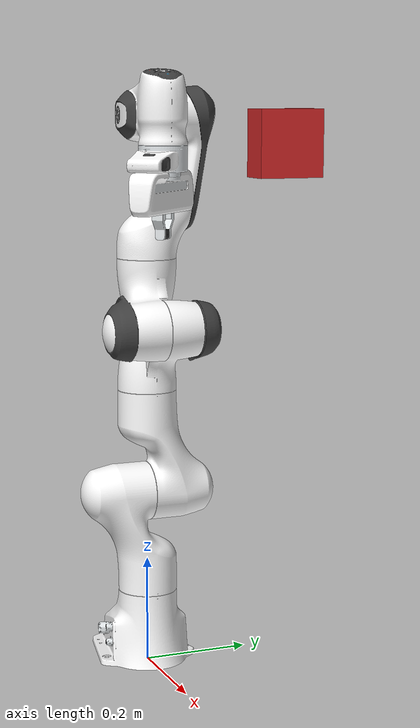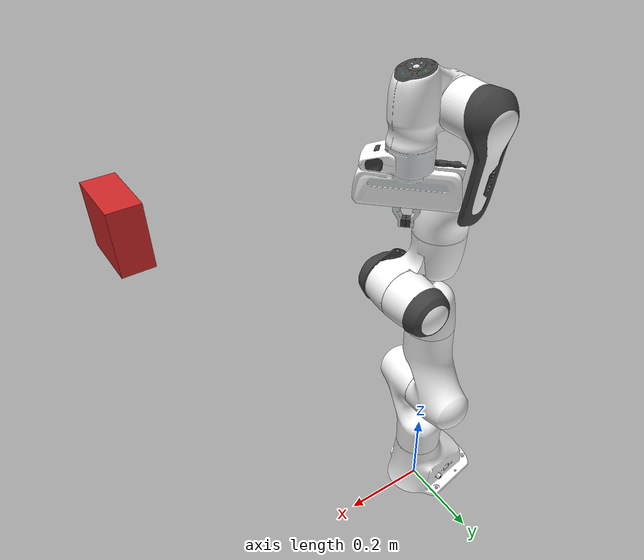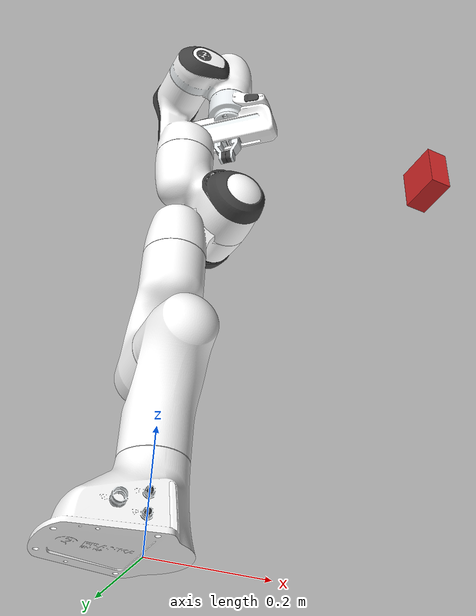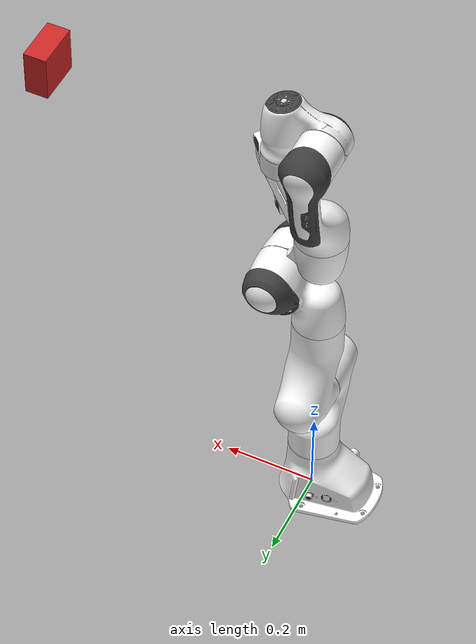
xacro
<?xml version="1.0"?>
<robot name="panda" xmlns:xacro="http://www.ros.org/wiki/xacro">

  <xacro:arg name="base_x" default="0.0"/>
  <xacro:arg name="base_y" default="0.0"/>
  <xacro:arg name="base_z" default="0.0"/>
  <xacro:arg name="base_roll" default="0.0"/>
  <xacro:arg name="base_pitch" default="0.0"/>
  <xacro:arg name="base_yaw" default="0.0"/>

  <xacro:include filename="$(find panda_description)/urdf/arm.xacro" />
  <xacro:include filename="$(find panda_description)/urdf/sensors.xacro" />
  <xacro:include filename="$(find panda_description)/urdf/gazebo.xacro" />
  <xacro:include filename="$(find panda_description)/urdf/ros2control.xacro" />

</robot>

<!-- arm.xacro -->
<robot name="panda" xmlns:xacro="http://www.ros.org/wiki/xacro">

  <!-- World Frame -->
  <link name="world"/>

  <!-- Link 0 - Base -->
  <link name="panda_link0">
    <visual>
      <geometry>
        <mesh filename="package://panda_description/meshes/visual/link0.dae"/>
      </geometry>
    </visual>
    <collision>
      <geometry>
        <mesh filename="package://panda_description/meshes/collision/link0.obj"/>
      </geometry>
    </collision>
      <inertial>
          <origin xyz="0 0 0" rpy="0.0 0.0 0.0"/>
          <mass value="0.1"/>
          <inertia ixx="0.1" ixy="0.0" ixz="0.0" iyy="0.1" iyz="0.0" izz="0.1"/>
      </inertial>
  </link>

  <!-- World-Base Joint -->
  <joint name="virtual_joint" type="fixed">
    <parent link="world"/>
    <child link="panda_link0"/>
    <origin xyz="$(arg base_x) $(arg base_y) $(arg base_z)" rpy="$(arg base_roll) $(arg base_pitch) $(arg base_yaw)"/>
  </joint>

  <!-- Link 1 -->
  <link name="panda_link1">
    <visual>
      <geometry>
        <mesh filename="package://panda_description/meshes/visual/link1.dae"/>
      </geometry>
    </visual>
    <collision>
      <geometry>
        <mesh filename="package://panda_description/meshes/collision/link1.obj"/>
      </geometry>
    </collision>
        <inertial>
            <origin xyz="0 0 0" rpy="0.0 0.0 0.0"/>
            <mass value="0.1"/>
            <inertia ixx="0.1" ixy="0.0" ixz="0.0" iyy="0.1" iyz="0.0" izz="0.1"/>
        </inertial>
  </link>

  <!-- Joint 1 -->
  <joint name="panda_joint1" type="revolute">
    <safety_controller k_position="100.0" k_velocity="40.0" soft_lower_limit="-2.8973" soft_upper_limit="2.8973"/>
    <origin rpy="0 0 0" xyz="0 0 0.333"/>
    <parent link="panda_link0"/>
    <child link="panda_link1"/>
    <axis xyz="0 0 1"/>
    <limit effort="30.0" lower="-2.9671" upper="2.9671" velocity="10.0"/>
  </joint>

  <!-- Link 2 -->
  <link name="panda_link2">
    <visual>
      <geometry>
        <mesh filename="package://panda_description/meshes/visual/link2.dae"/>
      </geometry>
    </visual>
    <collision>
      <geometry>
        <mesh filename="package://panda_description/meshes/collision/link2.obj"/>
      </geometry>
    </collision>
        <inertial>
          <origin xyz="0 0 0" rpy="0.0 0.0 0.0"/>
          <mass value="0.1"/>
          <inertia ixx="0.1" ixy="0.0" ixz="0.0" iyy="0.1" iyz="0.0" izz="0.1"/>
      </inertial>
  </link>

  <!-- Joint 2 -->
  <joint name="panda_joint2" type="revolute">
    <safety_controller k_position="100.0" k_velocity="40.0" soft_lower_limit="-1.7628" soft_upper_limit="1.7628"/>
    <origin rpy="-1.57079632679 0 0" xyz="0 0 0"/>
    <parent link="panda_link1"/>
    <child link="panda_link2"/>
    <axis xyz="0 0 1"/>
    <limit effort="30.0" lower="-1.8326" upper="1.8326" velocity="10.0"/>
  </joint>

  <!-- Link 3 -->
  <link name="panda_link3">
    <visual>
      <geometry>
        <mesh filename="package://panda_description/meshes/visual/link3.dae"/>
      </geometry>
    </visual>
    <collision>
      <geometry>
        <mesh filename="package://panda_description/meshes/collision/link3.obj"/>
      </geometry>
    </collision>
      <inertial>
          <origin xyz="0 0 0" rpy="0.0 0.0 0.0"/>
          <mass value="0.1"/>
          <inertia ixx="0.1" ixy="0.0" ixz="0.0" iyy="0.1" iyz="0.0" izz="0.1"/>
      </inertial>
  </link>

  <!-- Joint 3 -->
  <joint name="panda_joint3" type="revolute">
    <safety_controller k_position="100.0" k_velocity="40.0" soft_lower_limit="-2.8973" soft_upper_limit="2.8973"/>
    <origin rpy="1.57079632679 0 0" xyz="0 -0.316 0"/>
    <parent link="panda_link2"/>
    <child link="panda_link3"/>
    <axis xyz="0 0 1"/>
    <limit effort="30.0" lower="-2.9671" upper="2.9671" velocity="10.0"/>
  </joint>

  <!-- Link 4 -->
  <link name="panda_link4">
    <visual>
      <geometry>
        <mesh filename="package://panda_description/meshes/visual/link4.dae"/>
      </geometry>
    </visual>
    <collision>
      <geometry>
        <mesh filename="package://panda_description/meshes/collision/link4.obj"/>
      </geometry>
    </collision>
      <inertial>
          <origin xyz="0 0 0" rpy="0.0 0.0 0.0"/>
          <mass value="0.1"/>
          <inertia ixx="0.1" ixy="0.0" ixz="0.0" iyy="0.1" iyz="0.0" izz="0.1"/>
      </inertial>
  </link>

  <!-- Joint 4 -->
  <joint name="panda_joint4" type="revolute">
    <safety_controller k_position="100.0" k_velocity="40.0" soft_lower_limit="-3.0718" soft_upper_limit="-0.0698"/>
    <origin rpy="1.57079632679 0 0" xyz="0.0825 0 0"/>
    <parent link="panda_link3"/>
    <child link="panda_link4"/>
    <axis xyz="0 0 1"/>
    <limit effort="30.0" lower="-3.1416" upper="0.0" velocity="10.0"/>
  </joint>

  <!-- Link 5 -->
  <link name="panda_link5">
    <visual>
      <geometry>
        <mesh filename="package://panda_description/meshes/visual/link5.dae"/>
      </geometry>
    </visual>
    <collision>
      <geometry>
        <mesh filename="package://panda_description/meshes/collision/link5.obj"/>
      </geometry>
    </collision>
      <inertial>
          <origin xyz="0 0 0" rpy="0.0 0.0 0.0"/>
          <mass value="0.1"/>
          <inertia ixx="0.1" ixy="0.0" ixz="0.0" iyy="0.1" iyz="0.0" izz="0.1"/>
      </inertial>
  </link>

  <!-- Joint 5 -->
  <joint name="panda_joint5" type="revolute">
    <safety_controller k_position="100.0" k_velocity="40.0" soft_lower_limit="-2.8973" soft_upper_limit="2.8973"/>
    <origin rpy="-1.57079632679 0 0" xyz="-0.0825 0.384 0"/>
    <parent link="panda_link4"/>
    <child link="panda_link5"/>
    <axis xyz="0 0 1"/>
    <limit effort="30.0" lower="-2.9671" upper="2.9671" velocity="10.0"/>
  </joint>

  <!-- Link 6 -->
  <link name="panda_link6">
    <visual>
      <geometry>
        <mesh filename="package://panda_description/meshes/visual/link6.dae"/>
      </geometry>
    </visual>
    <collision>
      <geometry>
        <mesh filename="package://panda_description/meshes/collision/link6.obj"/>
      </geometry>
    </collision>
      <inertial>
          <origin xyz="0 0 0" rpy="0.0 0.0 0.0"/>
          <mass value="0.1"/>
          <inertia ixx="0.1" ixy="0.0" ixz="0.0" iyy="0.1" iyz="0.0" izz="0.1"/>
      </inertial>
  </link>

  <!-- Joint 6 -->
  <joint name="panda_joint6" type="revolute">
    <safety_controller k_position="100.0" k_velocity="40.0" soft_lower_limit="-0.0175" soft_upper_limit="3.7525"/>
    <origin rpy="1.57079632679 0 0" xyz="0 0 0"/>
    <parent link="panda_link5"/>
    <child link="panda_link6"/>
    <axis xyz="0 0 1"/>
    <limit effort="30.0" lower="-0.0873" upper="3.8223" velocity="10.0"/>
  </joint>

  <!-- Link 7 -->
  <link name="panda_link7">
    <visual>
      <geometry>
        <mesh filename="package://panda_description/meshes/visual/link7.dae"/>
      </geometry>
    </visual>
    <collision>
      <geometry>
        <mesh filename="package://panda_description/meshes/collision/link7.obj"/>
      </geometry>
    </collision>
      <inertial>
          <origin xyz="0 0 0" rpy="0.0 0.0 0.0"/>
          <mass value="0.1"/>
          <inertia ixx="0.1" ixy="0.0" ixz="0.0" iyy="0.1" iyz="0.0" izz="0.1"/>
      </inertial>
  </link>

  <!-- Joint 7 -->
  <joint name="panda_joint7" type="revolute">
    <safety_controller k_position="100.0" k_velocity="40.0" soft_lower_limit="-2.8973" soft_upper_limit="2.8973"/>
    <origin rpy="1.57079632679 0 0" xyz="0.088 0 0"/>
    <parent link="panda_link6"/>
    <child link="panda_link7"/>
    <axis xyz="0 0 1"/>
    <limit effort="30.0" lower="-2.9671" upper="2.9671" velocity="10.0"/>
  </joint>

  <!-- Hand Link -->
  <link name="panda_hand">
    <visual>
      <geometry>
        <mesh filename="package://panda_description/meshes/visual/hand.dae"/>
      </geometry>
    </visual>
    <collision>
      <geometry>
        <mesh filename="package://panda_description/meshes/collision/hand.obj"/>
      </geometry>
    </collision>
      <inertial>
          <origin xyz="0 0 0" rpy="0.0 0.0 0.0"/>
          <mass value="0.1"/>
          <inertia ixx="0.1" ixy="0.0" ixz="0.0" iyy="0.1" iyz="0.0" izz="0.1"/>
      </inertial>
  </link>

  <!-- Hand Joint -->
  <joint name="panda_hand_joint" type="fixed">
    <parent link="panda_link7"/>
    <child link="panda_hand"/>
    <origin rpy="0 0 -0.785398163397" xyz="0 0 0.106"/>
  </joint>

  <!-- Approximate grasp TCP between fingers (tunable) -->
  <link name="panda_grasp_tcp"/>
  <joint name="panda_grasp_tcp_joint" type="fixed">
    <parent link="panda_hand"/>
    <child link="panda_grasp_tcp"/>
    <origin rpy="0 0 0" xyz="0 0 0.10"/>
  </joint>

  <!-- Left Finger Link -->
  <link name="panda_leftfinger">
    <visual>
      <geometry>
        <mesh filename="package://panda_description/meshes/visual/finger.dae"/>
      </geometry>
    </visual>
    <collision>
      <geometry>
        <mesh filename="package://panda_description/meshes/collision/finger.obj"/>
      </geometry>
    </collision>
      <inertial>
          <origin xyz="0 0 0" rpy="0.0 0.0 0.0"/>
          <mass value="0.1"/>
          <inertia ixx="0.1" ixy="0.0" ixz="0.0" iyy="0.1" iyz="0.0" izz="0.1"/>
      </inertial>
  </link>

  <!-- Right Finger Link -->
  <link name="panda_rightfinger">
    <visual>
      <origin rpy="0 0 0" xyz="0 0 0"/>
      <geometry>
        <mesh filename="package://panda_description/meshes/visual/finger.dae"/>
      </geometry>
    </visual>
    <collision>
      <origin rpy="0 0 0" xyz="0 0 0"/>
      <geometry>
        <mesh filename="package://panda_description/meshes/collision/finger.obj"/>
      </geometry>
    </collision>
      <inertial>
          <origin xyz="0 0 0" rpy="0.0 0.0 0.0"/>
          <mass value="0.1"/>
          <inertia ixx="0.1" ixy="0.0" ixz="0.0" iyy="0.1" iyz="0.0" izz="0.1"/>
      </inertial>
  </link>

  <!-- Finger Joint 1 -->
  <joint name="panda_finger_joint1" type="prismatic">
    <parent link="panda_hand"/>
    <child link="panda_leftfinger"/>
    <origin rpy="0 0 0" xyz="0 0 0.0584"/>
    <axis xyz="0 1 0"/>
    <limit effort="30.0" lower="0.0" upper="0.04" velocity="10.0"/>
  </joint>

  <!-- Finger Joint 2 -->
  <joint name="panda_finger_joint2" type="prismatic">
    <parent link="panda_hand"/>
    <child link="panda_rightfinger"/>
    <origin rpy="0 0 3.14159265359" xyz="0 0 0.0584"/>
    <axis xyz="0 1 0"/>
    <limit effort="30.0" lower="0.0" upper="0.04" velocity="10.0"/>
  </joint>

</robot>

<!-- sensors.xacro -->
<robot name="panda" xmlns:xacro="http://www.ros.org/wiki/xacro">

    <link name="camera_link">
        <inertial>
            <origin xyz="0 0 0" rpy="0.0 0.0 0.0"/>
            <mass value="0.1"/>
            <inertia ixx="0.1" ixy="0.0" ixz="0.0" iyy="0.1" iyz="0.0" izz="0.1"/>
        </inertial>
        <visual>
            <origin xyz="0 0 0" rpy="0.0 0.0 0.0"/>
            <geometry>
                <box size="0.1 0.1 0.05"/>
            </geometry>
            <material name="red"/>
        </visual>
        <collision>
            <origin xyz="0 0 0" rpy="0.0 0.0 0.0"/>
            <geometry>
                <box size="0.1 0.1 0.05"/>
            </geometry>
            <material name="red"/>
        </collision>
    </link>

    <joint name="camera_joint" type="fixed">
        <origin xyz="0.6 0 1.0" rpy="0.0 ${pi/2} 0.0"/>
        <parent link="panda_link0"/>
        <child link="camera_link"/>
    </joint>

    <link name="camera_link_optical" />

    <joint name="camera_optical_joint" type="fixed">
        <parent link="camera_link"/>
        <child link="camera_link_optical"/>
        <origin xyz="0 0 0" rpy="${-pi/2} 0 ${-pi/2}"/>
    </joint>

    <gazebo reference="camera_link">
        <sensor name="camera" type="camera">
            <pose>0 0 0 0 0 0</pose>
            <visualize>true</visualize>
            <update_rate>10.0</update_rate>
            <alwaysOn>true</alwaysOn>
            <topic>camera/image_raw</topic>
            <gz_frame_id>camera_link_optical</gz_frame_id>
            <camera name="intel_realsense_r200">
                <camera_info_topic>camera/camera_info</camera_info_topic>
                <horizontal_fov>1.35</horizontal_fov>
                <image>
                    <width>640</width>
                    <height>320</height>
                    <format>R8G8B8</format>
                </image>
                <clip>
                    <near>0.05</near>
                    <far>8.0</far>
                </clip>
            </camera>
        </sensor>
        <sensor name="camera_depth" type="depth_camera">
            <pose>0 0 0 0 0 0</pose>
            <visualize>true</visualize>
            <update_rate>10.0</update_rate>
            <alwaysOn>true</alwaysOn>
            <topic>camera/depth_image</topic>
            <gz_frame_id>camera_link_optical</gz_frame_id>
            <camera name="intel_realsense_r200_depth">
                <horizontal_fov>1.35</horizontal_fov>
                <image>
                    <width>640</width>
                    <height>320</height>
                    <format>R_FLOAT32</format>
                </image>
                <clip>
                    <near>0.05</near>
                    <far>8.0</far>
                </clip>
            </camera>
        </sensor>
  </gazebo>

</robot>
